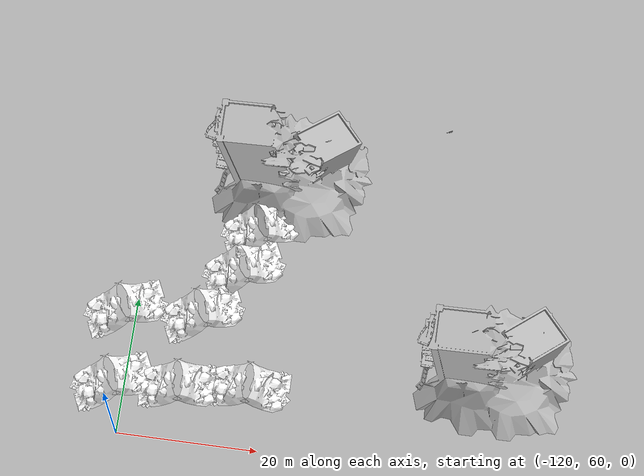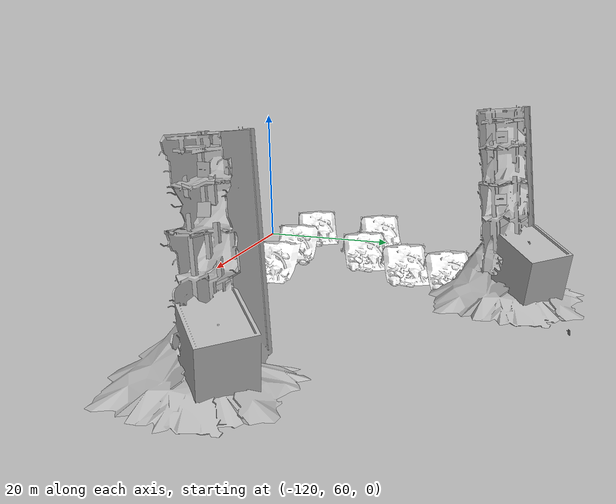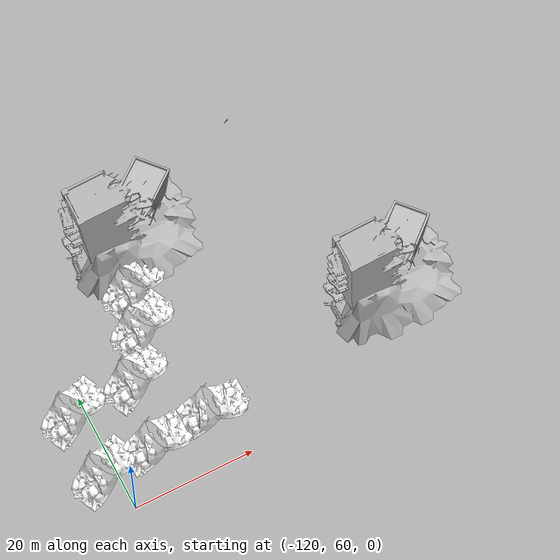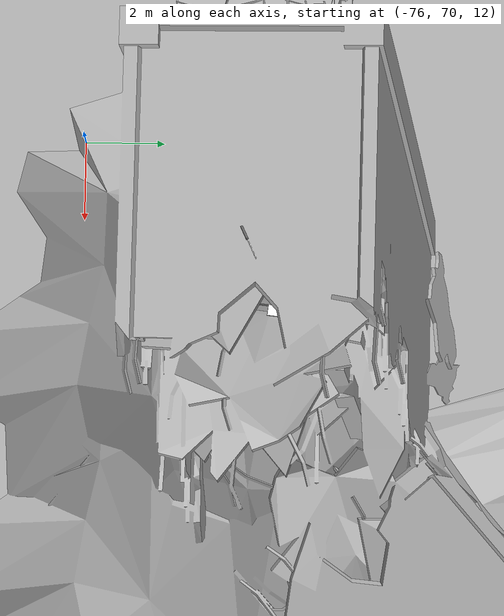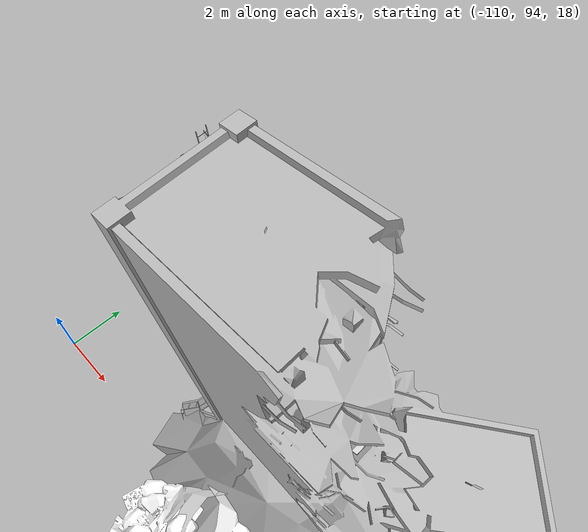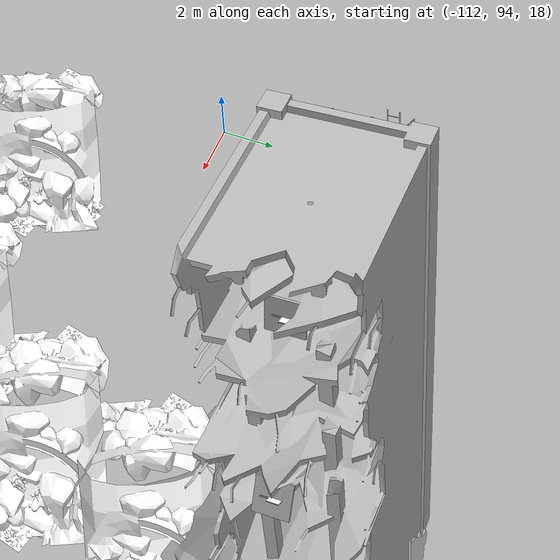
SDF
<sdf version="1.9">
 <world name="default">
  <physics type="ode">
   <max_step_size>0.004</max_step_size>
   <real_time_factor>1.0</real_time_factor>
   <real_time_update_rate>250</real_time_update_rate>
  </physics>
  <gravity>0 0 -9.8</gravity>
  <magnetic_field>6e-06 2.3e-05 -4.2e-05</magnetic_field>
  <atmosphere type="adiabatic"/>
  <scene>
   <grid>false</grid>
   <ambient>0.4 0.4 0.4 1</ambient>
   <background>0.7 0.7 0.7 1</background>
   <shadows>true</shadows>
  </scene>
  <light name="sunUTC" type="directional">
   <pose>0 0 500 0 -0 0</pose>
   <intensity>1</intensity>
   <direction>0.001 0.625 -0.78</direction>
   <diffuse>0.904 0.904 0.904 1</diffuse>
   <specular>0.271 0.271 0.271 1</specular>
   <attenuation><range>2000</range><linear>0</linear><constant>1</constant><quadratic>0</quadratic></attenuation>
   <spot><inner_angle>0</inner_angle><outer_angle>0</outer_angle><falloff>0</falloff></spot>
  </light>
  <light name="room_light_01" type="point">
   <pose>-99.25800323486328 99.0 13.22029972076416 1.4610009702433753 0.61296222872900497 3.0646405630424032</pose>
   <diffuse>1 1 1 1</diffuse>
   <specular>0.1 0.1 0.1 1</specular>
   <intensity>2.0</intensity>
   <visualize>false</visualize>
   <attenuation>
    <range>20</range>
    <constant>0.0</constant>
    <linear>0.25</linear>
    <quadratic>0.01</quadratic>
   </attenuation>
  </light>
  <light name="room_light_02" type="point">
   <pose>-99.25800323486328 99.0 21.22029972076416 1.4610009702433753 0.61296222872900497 3.0646405630424032</pose>
   <visualize>false</visualize>
   <diffuse>1 1 1 1</diffuse>
   <specular>0.1 0.1 0.1 1</specular>
   <intensity>2.0</intensity>
   <attenuation>
    <range>20</range>
    <constant>0.0</constant>
    <linear>0.25</linear>
    <quadratic>0.01</quadratic>
   </attenuation>
  </light>
  <light name="room_light_03" type="point">
   <pose>-64.1409912109375 75.0306396484375 20.173868179321289 1.5346099484236408 0.1174869930370713 3.0243400011677379</pose>
   <diffuse>1 1 1 1</diffuse>
   <specular>0.1 0.1 0.1 1</specular>
   <intensity>2.0</intensity>
   <visualize>false</visualize>
   <attenuation>
    <range>20</range>
    <constant>0.0</constant>
    <linear>0.25</linear>
    <quadratic>0.01</quadratic>
   </attenuation>
  </light>
  <spherical_coordinates>
   <surface_model>EARTH_WGS84</surface_model>
   <world_frame_orientation>ENU</world_frame_orientation>
   <latitude_deg>37.412173071650805</latitude_deg>
   <longitude_deg>-121.998878727967</longitude_deg>
   <elevation>38</elevation>
  </spherical_coordinates>
  <include>
   <uri>model://marker_7</uri>
   <name>aruco_marker_7</name>
   <pose>-96.483772277832031 68.52215576171875 3.8531563282012939 2.7093537970018531 1.5707900273389155 -3.1408861898262121</pose>
  </include>
  <include>
   <uri>model://marker_4</uri>
   <name>aruco_marker_4</name>
   <pose>-72.559776306152344 74.044273376464844 23.371681213378906 0.34953919022361835 1.442090029017562 0.78670018859034374</pose>
  </include>
  <include>
   <uri>model://marker_9</uri>
   <name>aruco_marker_9</name>
   <pose>-62.390190124511719 80.281578063964844 7.9964737892150879 -2.984069985566836 1.2723399928116839 -2.5439699729045504</pose>
  </include>
  <include>
   <uri>model://marker_2</uri>
   <name>aruco_marker_2</name>
   <pose>-79.36895751953125 109.86573791503906 4.1084423065185547 2.7093537970018531 1.5707900273389155 -3.1408861898262121</pose>
  </include>
  <include>
   <uri>model://marker_5</uri>
   <name>aruco_marker_5</name>
   <pose>-96.365486145019531 104.34359741210938 8.4045219421386719 -2.9952599895811516 1.2871600463809942 -2.5560700024072496</pose>
  </include>
  <include>
   <uri>model://marker_8</uri>
   <name>aruco_marker_8</name>
   <pose>-105.97454833984375 99.843254089355469 23.375644683837891 0.3378409862404616 1.4445500015518304 0.77447798584605232</pose>
  </include>
  <include>
   <uri>model://marker_1</uri>
   <name>aruco_marker_1</name>
   <pose>-103.63332366943359 99.378829956054688 20.037605285644531 1.4788500378994207 0.24640299389833475 3.1121099963295582</pose>
  </include>
  <include>
   <uri>model://marker_0</uri>
   <name>aruco_marker_0</name>
   <pose>-100.81744384765625 99.849197387695312 12.464632987976074 1.4610000032133637 0.61296199712500921 3.0646400027814855</pose>
  </include>
  <include>
   <uri>model://marker_3</uri>
   <name>aruco_marker_3</name>
   <pose>-71.102973937988281 74.365615844726562 20.18602180480957 1.5346099484236408 0.1174869930370713 3.0243400011677379</pose>
  </include>
  <include>
   <uri>model://marker_6</uri>
   <name>aruco_marker_6</name>
   <pose>-70.800155639648438 74.293670654296875 16.26873779296875 1.4769700259713585 0.32164600944967187 3.1065600054051101</pose>
  </include>
  <model name="box1">
   <pose>-100.91260528564453 100.33341979980469 12.426758766174316 2.184280017470619 0.097968295052761709 -1.5810500393988314</pose>
   <static>true</static>
   <link name="link1">
    <collision name="collision"><geometry><box><size>1.5 1.5 0.1</size></box></geometry></collision>
    <visual name="visual">
     <geometry><box><size>1.5 1.5 0.1</size></box></geometry>
     <material>
      <ambient>0.3 0.3 0.3 1</ambient>
      <diffuse>0.7 0.7 0.7 1</diffuse>
      <specular>1 1 1 1</specular>
     </material>
    </visual>
   </link>
  </model>
  <model name="box2">
   <pose>-71.102119445800781 74.855171203613281 20.195655822753906 1.6853399609865909 0.039175891267171595 -1.6887000537160914</pose>
   <static>true</static>
   <link name="link1">
    <collision name="collision"><geometry><box><size>1.5 1.5 0.1</size></box></geometry></collision>
    <visual name="visual">
     <geometry><box><size>1.5 1.5 0.1</size></box></geometry>
     <material>
      <ambient>0.3 0.3 0.3 1</ambient>
      <diffuse>0.7 0.7 0.7 1</diffuse>
      <specular>1 1 1 1</specular>
     </material>
    </visual>
   </link>
  </model>
  <model name="box3">
   <pose>-70.843658447265625 74.794685363769531 16.247594833374023 1.887199984915277 0.088925709134775113 -1.5774900103920806</pose>
   <static>true</static>
   <link name="link1">
    <collision name="collision"><geometry><box><size>1.5 1.5 0.1</size></box></geometry></collision>
    <visual name="visual">
     <geometry><box><size>1.5 1.5 0.1</size></box></geometry>
     <material>
      <ambient>0.3 0.3 0.3 1</ambient>
      <diffuse>0.7 0.7 0.7 1</diffuse>
      <specular>1 1 1 1</specular>
     </material>
    </visual>
   </link>
  </model>
  <model name="box4">
   <pose>-103.69155883789062 99.847564697265625 20.08210563659668 1.8156199902102499 0.088925618388241243 -1.5774900077226239</pose>
   <static>true</static>
   <link name="link1">
    <collision name="collision"><geometry><box><size>1.5 1.5 0.1</size></box></geometry></collision>
    <visual name="visual">
     <geometry><box><size>1.5 1.5 0.1</size></box></geometry>
     <material>
      <ambient>0.3 0.3 0.3 1</ambient>
      <diffuse>0.7 0.7 0.7 1</diffuse>
      <specular>1 1 1 1</specular>
     </material>
    </visual>
   </link>
  </model>
  <include>
   <uri>model://tunnel_wall_debris</uri>
   <name>tunnelblocker_1</name>
   <pose>-104.06036376953124 92.897933959960938 0 0 0 -1.1310601126575641</pose>
  </include>
  <include>
   <uri>model://tunnel_wall_debris</uri>
   <name>tunnelblocker_2</name>
   <pose>-102.47899627685547 68.933799743652344 0 0 0 -1.5641030510939553</pose>
  </include>
  <include>
   <uri>model://tunnel_wall_debris</uri>
   <name>tunnelblocker_3</name>
   <pose>-121.70696258544922 67.388877868652344 0 0 0 -1.1310601126575641</pose>
  </include>
  <include>
   <uri>model://tunnel_wall_debris</uri>
   <name>tunnelblocker_4</name>
   <pose>-121.66629028320312 78.290420532226548 0 0 0 -1.1310601126575641</pose>
  </include>
  <include>
   <uri>model://tunnel_wall_debris</uri>
   <name>tunnelblocker_5</name>
   <pose>-105.78587341308594 86.396354675292969 0 0 0 -1.1310601126575641</pose>
  </include>
  <include>
   <uri>model://tunnel_wall_debris</uri>
   <name>tunnelblocker_6</name>
   <pose>-112.32290649414064 67.967514038085938 0 0 0 -1.4245999395024393</pose>
  </include>
  <include>
   <uri>model://tunnel_wall_debris</uri>
   <name>tunnelblocker_7</name>
   <pose>-110.60462951660155 79.02187347412108 0 0 0 -1.1310601126575641</pose>
  </include>
  <include>
   <uri>model://collapsed_industrial_building</uri>
   <name>collapsed_industrial_1</name>
   <pose>-101.57592010498047 100.67900085449219 0 0 0 0</pose>
  </include>
  <include>
   <uri>model://collapsed_industrial_building</uri>
   <name>collapsed_industrial_2</name>
   <pose>-68.941596616125167 75.23395412637629 0 0 0 0</pose>
  </include>
 </world>
</sdf>

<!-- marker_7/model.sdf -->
<sdf version="1.6">
        <model name="marker_7">
            <link name='marker'>
                <pose frame=''>0 0 0 0 0 0</pose>
                <visual name='visual'>
                    <geometry>
                        <box>
                            <size>0.1778 0.1778 1e-5</size>
                        </box>
                    </geometry>
                    <material>
                        <script>
                            <uri>model://marker_7/materials/scripts</uri>
                            <uri>model://marker_7/materials/textures</uri>
                            <name>ArucoVisualMarker7/Marker</name>
                        </script>
                        <ambient>1 1 1 1</ambient>
                        <diffuse>1 1 1 1</diffuse>
                        <specular>0 0 0 1</specular>
                        <emissive>1 1 1 0</emissive>
                        <shader type='vertex'>
                            <normal_map>__default__</normal_map>
                        </shader>
                    </material>
                    <pose frame=''>0 0 0 0 -0 0</pose>
                    <cast_shadows>1</cast_shadows>
                    <transparency>0</transparency>
                </visual>
                <collision name='collision'>
                    <laser_retro>0</laser_retro>
                    <max_contacts>10</max_contacts>
                    <pose frame=''>0 0 0 0 -0 0</pose>
                    <geometry>
                        <box>
                            <size>0.1 0.1 1e-05</size>
                        </box>
                    </geometry>
                </collision>
            </link>

            <link name='marker_pad'>
                <pose frame='marker'>0 0 -1e-5 0 -0 0</pose>
                <visual name='visual'>
                    <geometry>
                        <box>
                            <size>0.1 0.1 1e-5</size>
                        </box>
                    </geometry>
                    <material>
                        <lighting>1</lighting>
                        <script>
                            <uri>file://media/materials/scripts/gazebo.material</uri>
                            <name>Gazebo/White</name>
                        </script>
                        <ambient>0.3 0.3 0.3 1</ambient>
                        <diffuse>0.7 0.7 0.7 1</diffuse>
                        <specular>0.01 0.01 0.01 1</specular>
                        <emissive>1 1 1 0</emissive>
                        <shader type='vertex'>
                            <normal_map>__default__</normal_map>
                        </shader>
                    </material>
                    <cast_shadows>1</cast_shadows>
                    <transparency>0</transparency>
                </visual>
                <collision name='collision'>
                    <laser_retro>0</laser_retro>
                    <max_contacts>10</max_contacts>
                    <pose frame=''>0 0 0 0 -0 0</pose>
                    <geometry>
                        <box>
                            <size>0.1 0.1 1e-5</size>
                        </box>
                    </geometry>
                </collision>
            </link>

            <joint name='marker_JOINT_marker_pad' type='revolute'>
                <parent>marker</parent>
                <child>marker_pad</child>
                <pose frame=''>0 0 0 0 -0 0</pose>
                <axis>
                    <xyz>0 0 1</xyz>
                    <limit>
                        <upper>0</upper>
                        <lower>0</lower>
                    </limit>
                </axis>
            </joint>

            <static>1</static>
            <allow_auto_disable>1</allow_auto_disable>

        </model>
    </sdf>

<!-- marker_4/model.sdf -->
<sdf version="1.6">
  <model name="aruco_marker_4">
    <static>true</static>
    <link name="link">
      <!-- Support pole: top reaches the panel's lower edge (0.35 m), no overlap -->
      <visual name="pole">
        <pose>0 0 0.175 0 0 0</pose>
        <geometry><cylinder><radius>0.03</radius><length>0.35</length></cylinder></geometry>
        <material>
          <ambient>0.3 0.3 0.3 1</ambient>
          <diffuse>0.4 0.4 0.4 1</diffuse>
          <specular>0.1 0.1 0.1 1</specular>
        </material>
      </visual>
      <collision name="pole_col">
        <pose>0 0 0.175 0 0 0</pose>
        <geometry><cylinder><radius>0.03</radius><length>0.35</length></cylinder></geometry>
      </collision>
      <!-- Marker panel 0.50 m, center 0.6 m high; lower edge at 0.35 m -->
      <!-- Local +Y face carries the texture; world yaw aims it inward. -->
      <visual name="marker">
        <pose>0 0.011 0.6 1.5708 0 0</pose>
        <geometry><box><size>0.50 0.50 0.002</size></box></geometry>
        <material>
          <ambient>1.0 1.0 1.0 1</ambient>
          <diffuse>1.0 1.0 1.0 1</diffuse>
          <specular>0.0 0.0 0.0 1</specular>
          <pbr>
            <metal>
              <albedo_map>model://aruco/marker_4/materials/textures/marker_4.png</albedo_map>
              <metalness>0.0</metalness>
              <roughness>1.0</roughness>
            </metal>
          </pbr>
        </material>
      </visual>
      <collision name="marker_col">
        <pose>0 0 0.6 0 0 0</pose>
        <geometry><box><size>0.50 0.04 0.52</size></box></geometry>
      </collision>
      <!-- Opaque gray backing on the local -Y side: occludes the texture from
           behind so a camera facing the back cannot detect a mirrored (flipped) marker. -->
      <visual name="back_panel">
        <pose>0 -0.01 0.6 1.5708 0 0</pose>
        <geometry><box><size>0.52 0.52 0.005</size></box></geometry>
        <material>
          <ambient>0.5 0.5 0.5 1</ambient>
          <diffuse>0.5 0.5 0.5 1</diffuse>
          <specular>0.1 0.1 0.1 1</specular>
        </material>
      </visual>
    </link>
  </model>
</sdf>

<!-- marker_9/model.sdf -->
<sdf version="1.6">
        <model name="marker_9">
            <link name='marker'>
                <pose frame=''>0 0 0 0 0 0</pose>
                <visual name='visual'>
                    <geometry>
                        <box>
                            <size>0.1778 0.1778 1e-5</size>
                        </box>
                    </geometry>
                    <material>
                        <script>
                            <uri>model://marker_9/materials/scripts</uri>
                            <uri>model://marker_9/materials/textures</uri>
                            <name>ArucoVisualMarker9/Marker</name>
                        </script>
                        <ambient>1 1 1 1</ambient>
                        <diffuse>1 1 1 1</diffuse>
                        <specular>0 0 0 1</specular>
                        <emissive>1 1 1 0</emissive>
                        <shader type='vertex'>
                            <normal_map>__default__</normal_map>
                        </shader>
                    </material>
                    <pose frame=''>0 0 0 0 -0 0</pose>
                    <cast_shadows>1</cast_shadows>
                    <transparency>0</transparency>
                </visual>
                <collision name='collision'>
                    <laser_retro>0</laser_retro>
                    <max_contacts>10</max_contacts>
                    <pose frame=''>0 0 0 0 -0 0</pose>
                    <geometry>
                        <box>
                            <size>0.1 0.1 1e-05</size>
                        </box>
                    </geometry>
                </collision>
            </link>

            <link name='marker_pad'>
                <pose frame='marker'>0 0 -1e-5 0 -0 0</pose>
                <visual name='visual'>
                    <geometry>
                        <box>
                            <size>0.1 0.1 1e-5</size>
                        </box>
                    </geometry>
                    <material>
                        <lighting>1</lighting>
                        <script>
                            <uri>file://media/materials/scripts/gazebo.material</uri>
                            <name>Gazebo/White</name>
                        </script>
                        <ambient>0.3 0.3 0.3 1</ambient>
                        <diffuse>0.7 0.7 0.7 1</diffuse>
                        <specular>0.01 0.01 0.01 1</specular>
                        <emissive>1 1 1 0</emissive>
                        <shader type='vertex'>
                            <normal_map>__default__</normal_map>
                        </shader>
                    </material>
                    <cast_shadows>1</cast_shadows>
                    <transparency>0</transparency>
                </visual>
                <collision name='collision'>
                    <laser_retro>0</laser_retro>
                    <max_contacts>10</max_contacts>
                    <pose frame=''>0 0 0 0 -0 0</pose>
                    <geometry>
                        <box>
                            <size>0.1 0.1 1e-5</size>
                        </box>
                    </geometry>
                </collision>
            </link>

            <joint name='marker_JOINT_marker_pad' type='revolute'>
                <parent>marker</parent>
                <child>marker_pad</child>
                <pose frame=''>0 0 0 0 -0 0</pose>
                <axis>
                    <xyz>0 0 1</xyz>
                    <limit>
                        <upper>0</upper>
                        <lower>0</lower>
                    </limit>
                </axis>
            </joint>

            <static>1</static>
            <allow_auto_disable>1</allow_auto_disable>

        </model>
    </sdf>

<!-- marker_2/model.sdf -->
<sdf version="1.6">
  <model name="aruco_marker_2">
    <static>true</static>
    <link name="link">
      <!-- Support pole: top reaches the panel's lower edge (0.35 m), no overlap -->
      <visual name="pole">
        <pose>0 0 0.175 0 0 0</pose>
        <geometry><cylinder><radius>0.03</radius><length>0.35</length></cylinder></geometry>
        <material>
          <ambient>0.3 0.3 0.3 1</ambient>
          <diffuse>0.4 0.4 0.4 1</diffuse>
          <specular>0.1 0.1 0.1 1</specular>
        </material>
      </visual>
      <collision name="pole_col">
        <pose>0 0 0.175 0 0 0</pose>
        <geometry><cylinder><radius>0.03</radius><length>0.35</length></cylinder></geometry>
      </collision>
      <!-- Marker panel 0.50 m, center 0.6 m high; lower edge at 0.35 m -->
      <!-- Local +Y face carries the texture; world yaw aims it inward. -->
      <visual name="marker">
        <pose>0 0.011 0.6 1.5708 0 0</pose>
        <geometry><box><size>0.50 0.50 0.002</size></box></geometry>
        <material>
          <ambient>1.0 1.0 1.0 1</ambient>
          <diffuse>1.0 1.0 1.0 1</diffuse>
          <specular>0.0 0.0 0.0 1</specular>
          <pbr>
            <metal>
              <albedo_map>model://aruco/marker_2/materials/textures/marker_2.png</albedo_map>
              <metalness>0.0</metalness>
              <roughness>1.0</roughness>
            </metal>
          </pbr>
        </material>
      </visual>
      <collision name="marker_col">
        <pose>0 0 0.6 0 0 0</pose>
        <geometry><box><size>0.50 0.04 0.52</size></box></geometry>
      </collision>
      <!-- Opaque gray backing on the local -Y side: occludes the texture from
           behind so a camera facing the back cannot detect a mirrored (flipped) marker. -->
      <visual name="back_panel">
        <pose>0 -0.01 0.6 1.5708 0 0</pose>
        <geometry><box><size>0.52 0.52 0.005</size></box></geometry>
        <material>
          <ambient>0.5 0.5 0.5 1</ambient>
          <diffuse>0.5 0.5 0.5 1</diffuse>
          <specular>0.1 0.1 0.1 1</specular>
        </material>
      </visual>
    </link>
  </model>
</sdf>

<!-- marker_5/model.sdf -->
<sdf version="1.6">
  <model name="aruco_marker_5">
    <static>true</static>
    <link name="link">
      <!-- Support pole: top reaches the panel's lower edge (0.35 m), no overlap -->
      <visual name="pole">
        <pose>0 0 0.175 0 0 0</pose>
        <geometry><cylinder><radius>0.03</radius><length>0.35</length></cylinder></geometry>
        <material>
          <ambient>0.3 0.3 0.3 1</ambient>
          <diffuse>0.4 0.4 0.4 1</diffuse>
          <specular>0.1 0.1 0.1 1</specular>
        </material>
      </visual>
      <collision name="pole_col">
        <pose>0 0 0.175 0 0 0</pose>
        <geometry><cylinder><radius>0.03</radius><length>0.35</length></cylinder></geometry>
      </collision>
      <!-- Marker panel 0.50 m, center 0.6 m high; lower edge at 0.35 m -->
      <!-- Local +Y face carries the texture; world yaw aims it inward. -->
      <visual name="marker">
        <pose>0 0.011 0.6 1.5708 0 0</pose>
        <geometry><box><size>0.50 0.50 0.002</size></box></geometry>
        <material>
          <ambient>1.0 1.0 1.0 1</ambient>
          <diffuse>1.0 1.0 1.0 1</diffuse>
          <specular>0.0 0.0 0.0 1</specular>
          <pbr>
            <metal>
              <albedo_map>model://aruco/marker_5/materials/textures/marker_5.png</albedo_map>
              <metalness>0.0</metalness>
              <roughness>1.0</roughness>
            </metal>
          </pbr>
        </material>
      </visual>
      <collision name="marker_col">
        <pose>0 0 0.6 0 0 0</pose>
        <geometry><box><size>0.50 0.04 0.52</size></box></geometry>
      </collision>
    </link>
  </model>
</sdf>

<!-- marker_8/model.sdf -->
<sdf version="1.6">
        <model name="marker_8">
            <link name='marker'>
                <pose frame=''>0 0 0 0 0 0</pose>
                <visual name='visual'>
                    <geometry>
                        <box>
                            <size>0.1778 0.1778 1e-5</size>
                        </box>
                    </geometry>
                    <material>
                        <script>
                            <uri>model://marker_8/materials/scripts</uri>
                            <uri>model://marker_8/materials/textures</uri>
                            <name>ArucoVisualMarker8/Marker</name>
                        </script>
                        <ambient>1 1 1 1</ambient>
                        <diffuse>1 1 1 1</diffuse>
                        <specular>0 0 0 1</specular>
                        <emissive>1 1 1 0</emissive>
                        <shader type='vertex'>
                            <normal_map>__default__</normal_map>
                        </shader>
                    </material>
                    <pose frame=''>0 0 0 0 -0 0</pose>
                    <cast_shadows>1</cast_shadows>
                    <transparency>0</transparency>
                </visual>
                <collision name='collision'>
                    <laser_retro>0</laser_retro>
                    <max_contacts>10</max_contacts>
                    <pose frame=''>0 0 0 0 -0 0</pose>
                    <geometry>
                        <box>
                            <size>0.1 0.1 1e-05</size>
                        </box>
                    </geometry>
                </collision>
            </link>

            <link name='marker_pad'>
                <pose frame='marker'>0 0 -1e-5 0 -0 0</pose>
                <visual name='visual'>
                    <geometry>
                        <box>
                            <size>0.1 0.1 1e-5</size>
                        </box>
                    </geometry>
                    <material>
                        <lighting>1</lighting>
                        <script>
                            <uri>file://media/materials/scripts/gazebo.material</uri>
                            <name>Gazebo/White</name>
                        </script>
                        <ambient>0.3 0.3 0.3 1</ambient>
                        <diffuse>0.7 0.7 0.7 1</diffuse>
                        <specular>0.01 0.01 0.01 1</specular>
                        <emissive>1 1 1 0</emissive>
                        <shader type='vertex'>
                            <normal_map>__default__</normal_map>
                        </shader>
                    </material>
                    <cast_shadows>1</cast_shadows>
                    <transparency>0</transparency>
                </visual>
                <collision name='collision'>
                    <laser_retro>0</laser_retro>
                    <max_contacts>10</max_contacts>
                    <pose frame=''>0 0 0 0 -0 0</pose>
                    <geometry>
                        <box>
                            <size>0.1 0.1 1e-5</size>
                        </box>
                    </geometry>
                </collision>
            </link>

            <joint name='marker_JOINT_marker_pad' type='revolute'>
                <parent>marker</parent>
                <child>marker_pad</child>
                <pose frame=''>0 0 0 0 -0 0</pose>
                <axis>
                    <xyz>0 0 1</xyz>
                    <limit>
                        <upper>0</upper>
                        <lower>0</lower>
                    </limit>
                </axis>
            </joint>

            <static>1</static>
            <allow_auto_disable>1</allow_auto_disable>

        </model>
    </sdf>

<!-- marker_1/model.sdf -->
<sdf version="1.6">
  <model name="aruco_marker_1">
    <static>true</static>
    <link name="link">
      <!-- Support pole: top reaches the panel's lower edge (0.35 m), no overlap -->
      <visual name="pole">
        <pose>0 0 0.175 0 0 0</pose>
        <geometry><cylinder><radius>0.03</radius><length>0.35</length></cylinder></geometry>
        <material>
          <ambient>0.3 0.3 0.3 1</ambient>
          <diffuse>0.4 0.4 0.4 1</diffuse>
          <specular>0.1 0.1 0.1 1</specular>
        </material>
      </visual>
      <collision name="pole_col">
        <pose>0 0 0.175 0 0 0</pose>
        <geometry><cylinder><radius>0.03</radius><length>0.35</length></cylinder></geometry>
      </collision>
      <!-- Marker panel 0.50 m, center 0.6 m high; lower edge at 0.35 m -->
      <!-- Local +Y face carries the texture; world yaw aims it inward. -->
      <visual name="marker">
        <pose>0 0.011 0.6 1.5708 0 0</pose>
        <geometry><box><size>0.50 0.50 0.002</size></box></geometry>
        <material>
          <ambient>1.0 1.0 1.0 1</ambient>
          <diffuse>1.0 1.0 1.0 1</diffuse>
          <specular>0.0 0.0 0.0 1</specular>
          <pbr>
            <metal>
              <albedo_map>model://aruco/marker_1/materials/textures/marker_1.png</albedo_map>
              <metalness>0.0</metalness>
              <roughness>1.0</roughness>
            </metal>
          </pbr>
        </material>
      </visual>
      <collision name="marker_col">
        <pose>0 0 0.6 0 0 0</pose>
        <geometry><box><size>0.50 0.04 0.52</size></box></geometry>
      </collision>
      <!-- Opaque gray backing on the local -Y side: occludes the texture from
           behind so a camera facing the back cannot detect a mirrored (flipped) marker. -->
      <visual name="back_panel">
        <pose>0 -0.01 0.6 1.5708 0 0</pose>
        <geometry><box><size>0.52 0.52 0.005</size></box></geometry>
        <material>
          <ambient>0.5 0.5 0.5 1</ambient>
          <diffuse>0.5 0.5 0.5 1</diffuse>
          <specular>0.1 0.1 0.1 1</specular>
        </material>
      </visual>
    </link>
  </model>
</sdf>

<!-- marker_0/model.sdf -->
<sdf version="1.6">
  <model name="aruco_marker_0">
    <static>true</static>
    <link name="link">
      <!-- Support pole: top reaches the panel's lower edge (0.35 m), no overlap -->
      <visual name="pole">
        <pose>0 0 0.175 0 0 0</pose>
        <geometry><cylinder><radius>0.03</radius><length>0.35</length></cylinder></geometry>
        <material>
          <ambient>0.3 0.3 0.3 1</ambient>
          <diffuse>0.4 0.4 0.4 1</diffuse>
          <specular>0.1 0.1 0.1 1</specular>
        </material>
      </visual>
      <collision name="pole_col">
        <pose>0 0 0.175 0 0 0</pose>
        <geometry><cylinder><radius>0.03</radius><length>0.35</length></cylinder></geometry>
      </collision>
      <!-- Marker panel 0.50 m, center 0.6 m high; lower edge at 0.35 m -->
      <!-- Local +Y face carries the texture; world yaw aims it inward. -->
      <visual name="marker">
        <pose>0 0.011 0.6 1.5708 0 0</pose>
        <geometry><box><size>0.50 0.50 0.002</size></box></geometry>
        <material>
          <ambient>1.0 1.0 1.0 1</ambient>
          <diffuse>1.0 1.0 1.0 1</diffuse>
          <specular>0.0 0.0 0.0 1</specular>
          <pbr>
            <metal>
              <albedo_map>model://aruco/marker_0/materials/textures/marker_0.png</albedo_map>
              <metalness>0.0</metalness>
              <roughness>1.0</roughness>
            </metal>
          </pbr>
        </material>
      </visual>
      <collision name="marker_col">
        <pose>0 0 0.6 0 0 0</pose>
        <geometry><box><size>0.50 0.04 0.52</size></box></geometry>
      </collision>
      <!-- Opaque gray backing on the local -Y side: occludes the texture from
           behind so a camera facing the back cannot detect a mirrored (flipped) marker. -->
      <visual name="back_panel">
        <pose>0 -0.01 0.6 1.5708 0 0</pose>
        <geometry><box><size>0.52 0.52 0.005</size></box></geometry>
        <material>
          <ambient>0.5 0.5 0.5 1</ambient>
          <diffuse>0.5 0.5 0.5 1</diffuse>
          <specular>0.1 0.1 0.1 1</specular>
        </material>
      </visual>
    </link>
  </model>
</sdf>

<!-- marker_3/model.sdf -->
<sdf version="1.6">
  <model name="aruco_marker_3">
    <static>true</static>
    <link name="link">
      <!-- Support pole: top reaches the panel's lower edge (0.35 m), no overlap -->
      <visual name="pole">
        <pose>0 0 0.175 0 0 0</pose>
        <geometry><cylinder><radius>0.03</radius><length>0.35</length></cylinder></geometry>
        <material>
          <ambient>0.3 0.3 0.3 1</ambient>
          <diffuse>0.4 0.4 0.4 1</diffuse>
          <specular>0.1 0.1 0.1 1</specular>
        </material>
      </visual>
      <collision name="pole_col">
        <pose>0 0 0.175 0 0 0</pose>
        <geometry><cylinder><radius>0.03</radius><length>0.35</length></cylinder></geometry>
      </collision>
      <!-- Marker panel 0.50 m, center 0.6 m high; lower edge at 0.35 m -->
      <!-- Local +Y face carries the texture; world yaw aims it inward. -->
      <visual name="marker">
        <pose>0 0.011 0.6 1.5708 0 0</pose>
        <geometry><box><size>0.50 0.50 0.002</size></box></geometry>
        <material>
          <ambient>1.0 1.0 1.0 1</ambient>
          <diffuse>1.0 1.0 1.0 1</diffuse>
          <specular>0.0 0.0 0.0 1</specular>
          <pbr>
            <metal>
              <albedo_map>model://aruco/marker_3/materials/textures/marker_3.png</albedo_map>
              <metalness>0.0</metalness>
              <roughness>1.0</roughness>
            </metal>
          </pbr>
        </material>
      </visual>
      <collision name="marker_col">
        <pose>0 0 0.6 0 0 0</pose>
        <geometry><box><size>0.50 0.04 0.52</size></box></geometry>
      </collision>
      <!-- Opaque gray backing on the local -Y side: occludes the texture from
           behind so a camera facing the back cannot detect a mirrored (flipped) marker. -->
      <visual name="back_panel">
        <pose>0 -0.01 0.6 1.5708 0 0</pose>
        <geometry><box><size>0.52 0.52 0.005</size></box></geometry>
        <material>
          <ambient>0.5 0.5 0.5 1</ambient>
          <diffuse>0.5 0.5 0.5 1</diffuse>
          <specular>0.1 0.1 0.1 1</specular>
        </material>
      </visual>
    </link>
  </model>
</sdf>

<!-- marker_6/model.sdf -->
<sdf version="1.6">
    <model name="marker_6">
         <link name='marker'>
            <pose frame=''>0 0 0 0 0 0</pose>
            <visual name='visual'>
                <geometry>
                    <box>
                        <size>0.1 0.1 1e-5</size>
                    </box>
                </geometry>
                <material>
                    <script>
                        <uri>model://marker_6/materials/scripts</uri>
                        <uri>model://marker_6/materials/textures</uri>
                        <name>marker_material6</name>
                    </script>
                    <ambient>1 1 1 1</ambient>
                    <diffuse>1 1 1 1</diffuse>
                    <specular>0 0 0 1</specular>
                    <emissive>1 1 1 0</emissive>
                </material>
                <pose frame=''>0 0 0 0 -0 0</pose>
                <cast_shadows>1</cast_shadows>
                <transparency>0</transparency>
            </visual>
            <collision name='collision'>
                <laser_retro>0</laser_retro>
                <max_contacts>10</max_contacts>
                <pose frame=''>0 0 0 0 -0 0</pose>
                <geometry>
                    <box>
                        <size>0.1 0.1 1e-05</size>
                    </box>
                </geometry>
            </collision>
        </link>

        <link name='marker_pad'>
            <pose frame='marker'>0 0 -1e-5 0 -0 0</pose>
            <visual name='visual'>
                <geometry>
                    <box>
                        <size>0.1 0.1 1e-5</size>
                    </box>
                </geometry>
                <material>
                    <lighting>1</lighting>
                    <script>
                        <uri>file://media/materials/scripts/gazebo.material</uri>
                        <name>Gazebo/White</name>
                    </script>
                    <ambient>0.3 0.3 0.3 1</ambient>
                    <diffuse>0.7 0.7 0.7 1</diffuse>
                    <specular>0.01 0.01 0.01 1</specular>
                    <emissive>1 1 1 0</emissive>
                </material>
                <cast_shadows>1</cast_shadows>
                <transparency>0</transparency>
            </visual>
            <collision name='collision'>
                <laser_retro>0</laser_retro>
                <max_contacts>10</max_contacts>
                <pose frame=''>0 0 0 0 -0 0</pose>
                <geometry>
                    <box>
                        <size>0.1 0.1 1e-5</size>
                    </box>
                </geometry>
            </collision>
        </link>

        <joint name='marker_JOINT_marker_pad' type='revolute'>
            <parent>marker</parent>
            <child>marker_pad</child>
            <pose frame=''>0 0 0 0 -0 0</pose>
            <axis>
                <xyz>0 0 1</xyz>
                <limit>
                    <upper>0</upper>
                    <lower>0</lower>
                </limit>
            </axis>
        </joint>

        <static>1</static>
        <allow_auto_disable>1</allow_auto_disable>

    </model>
</sdf>

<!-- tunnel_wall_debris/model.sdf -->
<sdf version="1.6">
    <model name="tunnelblocker">
        <static>true</static>
        <link name="base_link">
            <collision name="collision">
                <pose>0 0 0 0 0 0</pose>
                <geometry>
                    <mesh>
                        <uri>meshes/tunnelblocker.dae</uri>
                        <scale>1.0 1.0 1.0</scale>
                    </mesh>
                </geometry>
            </collision>
            <visual name="Walls_visual">
                <geometry>
                    <mesh>
                        <uri>meshes/tunnelblocker.dae</uri>
                        <submesh>
                            <name>Walls</name>
                            <center>false</center>
                        </submesh>
                    </mesh>
                </geometry>
                <material>
                    <diffuse>1.0 1.0 1.0</diffuse>
                    <specular>1.0 1.0 1.0</specular>
                    <pbr>
                        <metal>
                            <albedo_map>materials/textures/Walls_Albedo.jpg</albedo_map>
                            <normal_map>materials/textures/Walls_Normal.jpg</normal_map>
                            <metalness_map>materials/textures/Walls_Metalness.jpg</metalness_map>
                            <roughness_map>materials/textures/Walls_Roughness.jpg</roughness_map>
                        </metal>
                    </pbr>
                </material>
            </visual>
            <visual name="Chainlink_visual">
                <geometry>
                    <mesh>
                        <uri>meshes/tunnelblocker.dae</uri>
                        <submesh>
                            <name>Chainlink</name>
                            <center>false</center>
                        </submesh>
                    </mesh>
                </geometry>
                <material>
                    <diffuse>1.0 1.0 1.0</diffuse>
                    <specular>1.0 1.0 1.0</specular>
                    <pbr>
                        <metal>
                            <albedo_map>materials/textures/Chainlink_Albedo.jpg</albedo_map>
                            <normal_map>materials/textures/Chainlink_Normal.jpg</normal_map>
                            <metalness_map>materials/textures/Chainlink_Metalness.jpg</metalness_map>
                            <roughness_map>materials/textures/Chainlink_Roughness.jpg</roughness_map>
                        </metal>
                    </pbr>
                </material>
            </visual>
            <visual name="Ground_visual">
                <geometry>
                    <mesh>
                        <uri>meshes/tunnelblocker.dae</uri>
                        <submesh>
                            <name>Ground</name>
                            <center>false</center>
                        </submesh>
                    </mesh>
                </geometry>
                <material>
                    <diffuse>1.0 1.0 1.0</diffuse>
                    <specular>1.0 1.0 1.0</specular>
                    <pbr>
                        <metal>
                            <albedo_map>materials/textures/Ground_Albedo.jpg</albedo_map>
                            <normal_map>materials/textures/Ground_Normal.jpg</normal_map>
                            <roughness_map>materials/textures/Ground_Roughness.jpg</roughness_map>
                        </metal>
                    </pbr>
                </material>
            </visual>
            <visual name="RockPile_visual">
                <geometry>
                    <mesh>
                        <uri>meshes/tunnelblocker.dae</uri>
                        <submesh>
                            <name>RockPile</name>
                            <center>false</center>
                        </submesh>
                    </mesh>
                </geometry>
                <material>
                    <diffuse>1.0 1.0 1.0</diffuse>
                    <specular>1.0 1.0 1.0</specular>
                    <pbr>
                        <metal>
                            <albedo_map>materials/textures/RockPile_Albedo.jpg</albedo_map>
                            <normal_map>materials/textures/RockPile_Normal.jpg</normal_map>
                            <roughness_map>materials/textures/RockPile_Roughness.jpg</roughness_map>
                        </metal>
                    </pbr>
                </material>
            </visual>
            <visual name="Rocks_visual">
                <geometry>
                    <mesh>
                        <uri>meshes/tunnelblocker.dae</uri>
                        <submesh>
                            <name>Rocks</name>
                            <center>false</center>
                        </submesh>
                    </mesh>
                </geometry>
                <material>
                    <diffuse>1.0 1.0 1.0</diffuse>
                    <specular>1.0 1.0 1.0</specular>
                    <pbr>
                        <metal>
                            <albedo_map>materials/textures/Rocks_Albedo.jpg</albedo_map>
                            <normal_map>materials/textures/Rocks_Normal.jpg</normal_map>
                            <roughness_map>materials/textures/Rocks_Roughness.jpg</roughness_map>
                        </metal>
                    </pbr>
                </material>
            </visual>
        </link>
    </model>
</sdf>

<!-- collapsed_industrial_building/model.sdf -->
<sdf version="1.6">
    <model name="collapsed_industrial">
        <static>true</static>
        <link name="link">
            <collision name="collision">
                <geometry>
                    <mesh>
                        <uri>model://collapsed_industrial_building/meshes/collapsed_industrial.dae</uri>
                    </mesh>
                </geometry>
            </collision>
            <visual name="visual">
                <geometry>
                    <mesh>
                        <uri>model://collapsed_industrial_building/meshes/collapsed_industrial.dae</uri>
                    </mesh>
                </geometry>
            </visual>
        </link>
    </model>
</sdf>
